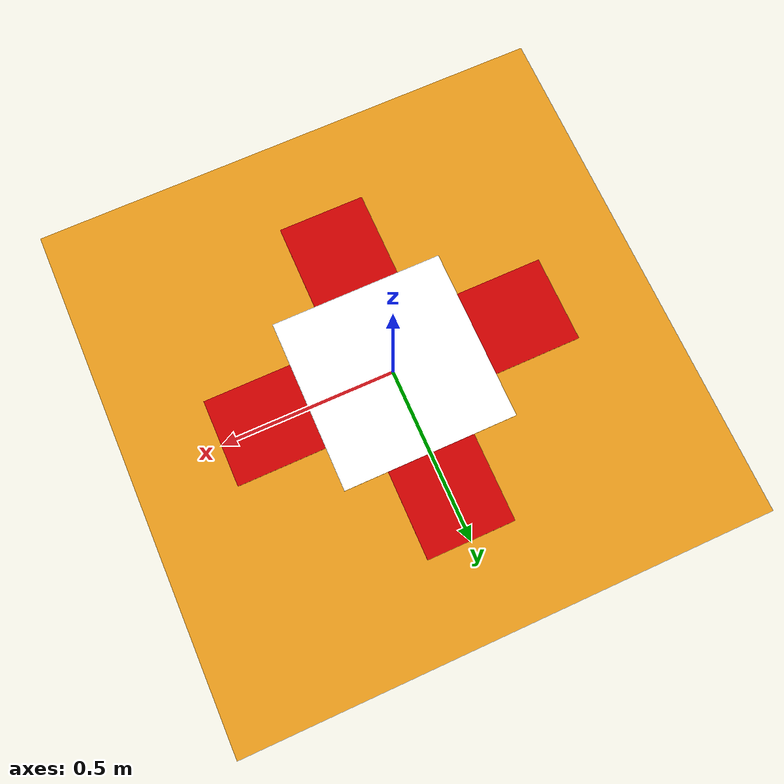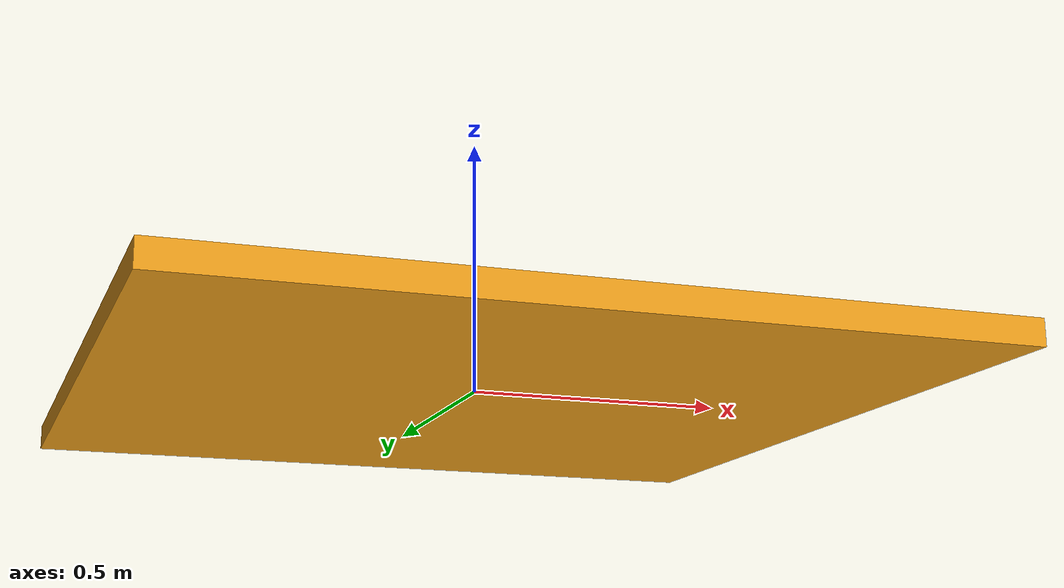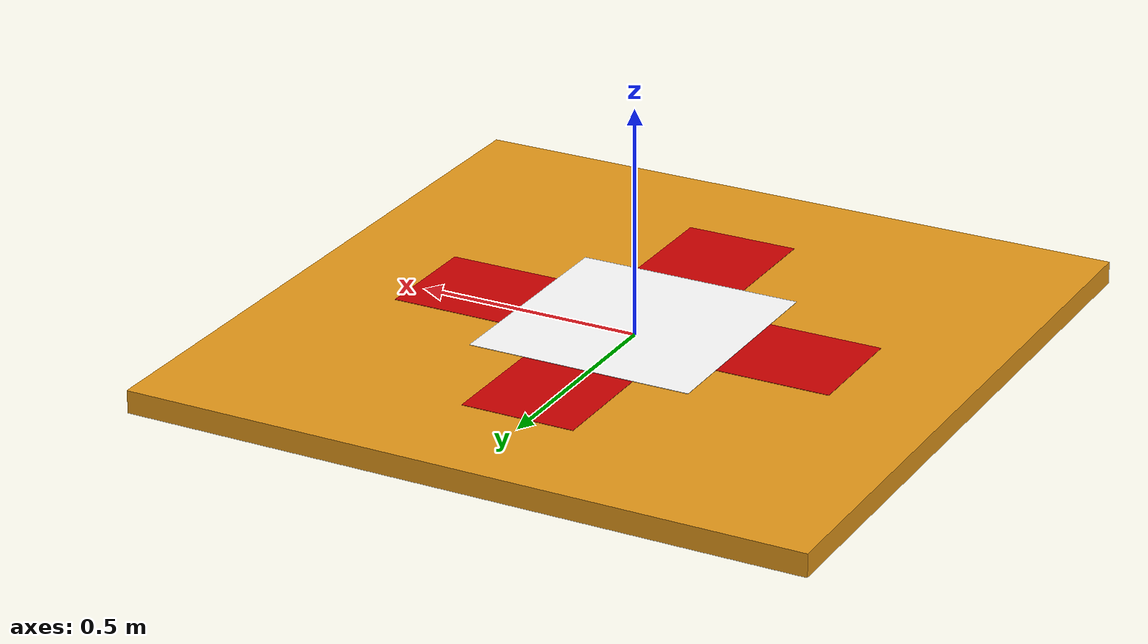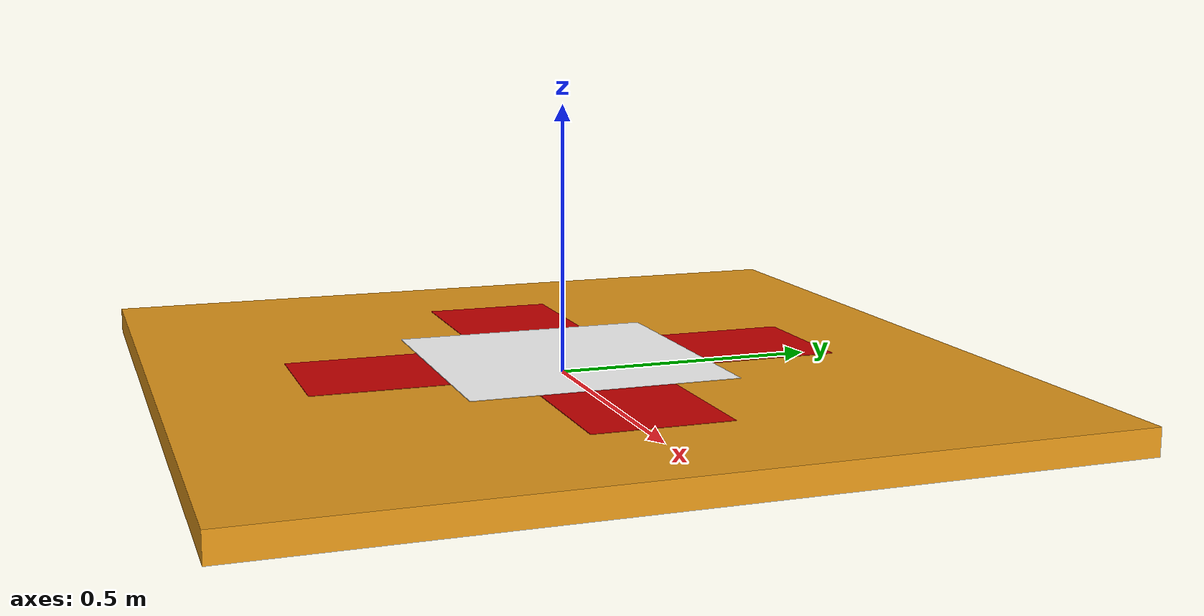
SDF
<?xml version="1.0"?>
<sdf version="1.9">
  <model name="moving_platform">
    <static>false</static>

    <link name="base_link">
      <inertial>
        <mass>50.0</mass>
        <inertia>
          <ixx>9.386</ixx>
          <iyy>9.386</iyy>
          <izz>18.75</izz>
          <ixy>0</ixy>
          <ixz>0</ixz>
          <iyz>0</iyz>
        </inertia>
      </inertial>

      <collision name="collision">
        <geometry>
          <box>
            <size>1.5 1.5 0.05</size>
          </box>
        </geometry>
      </collision>

      <visual name="visual">
        <geometry>
          <box>
            <size>1.5 1.5 0.05</size>
          </box>
        </geometry>
        <material>
          <ambient>0.9 0.6 0.1 1</ambient>
          <diffuse>0.9 0.6 0.1 1</diffuse>
        </material>
      </visual>

      <visual name="cross_arm_horizontal">
        <pose>0 0 0.026 0 0 0</pose>
        <geometry>
          <box>
            <size>1.0 0.25 0.001</size>
          </box>
        </geometry>
        <material>
          <ambient>0.8 0 0 1</ambient>
          <diffuse>0.8 0 0 1</diffuse>
        </material>
      </visual>

      <visual name="cross_arm_vertical">
        <pose>0 0 0.026 0 0 0</pose>
        <geometry>
          <box>
            <size>0.25 1.0 0.001</size>
          </box>
        </geometry>
        <material>
          <ambient>0.8 0 0 1</ambient>
          <diffuse>0.8 0 0 1</diffuse>
        </material>
      </visual>

      <visual name="aruco_marker">
        <pose>0 0 0.027 0 0 0</pose>
        <geometry>
          <box>
            <size>0.5 0.5 0.001</size>
          </box>
        </geometry>
        <material>
          <ambient>1 1 1 1</ambient>
          <diffuse>1 1 1 1</diffuse>
          <pbr>
            <metal>
              <albedo_map>model://moving_platform/materials/textures/aruco_marker.png</albedo_map>
              <roughness>1.0</roughness>
              <metalness>0.0</metalness>
            </metal>
          </pbr>
        </material>
      </visual>
    </link>

    <plugin
        filename="gz-sim-velocity-control-system"
        name="gz::sim::systems::VelocityControl">
    </plugin>
  </model>
</sdf>
